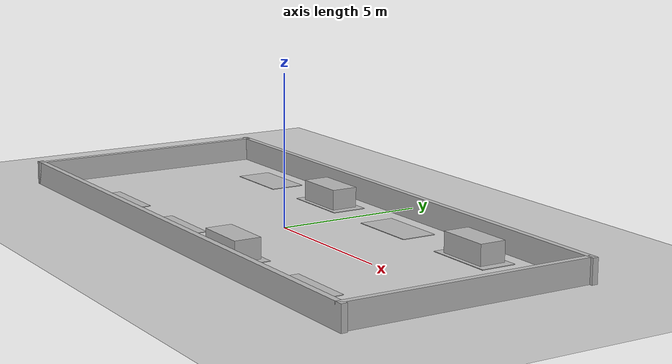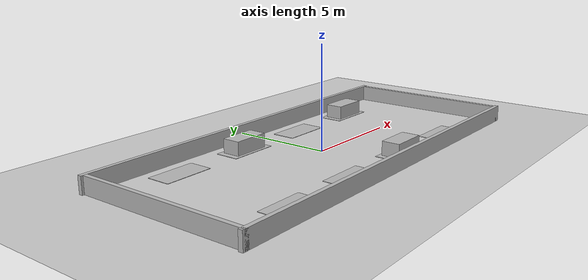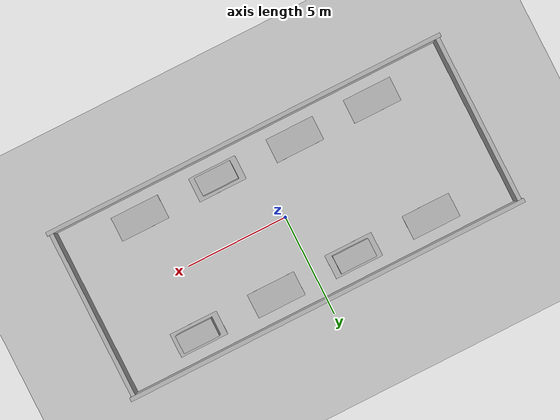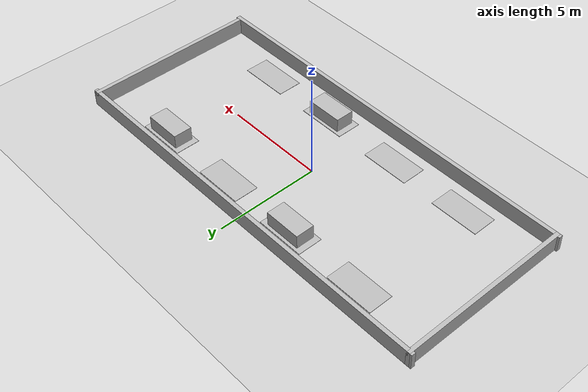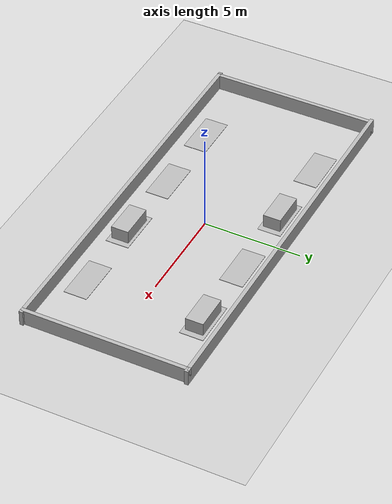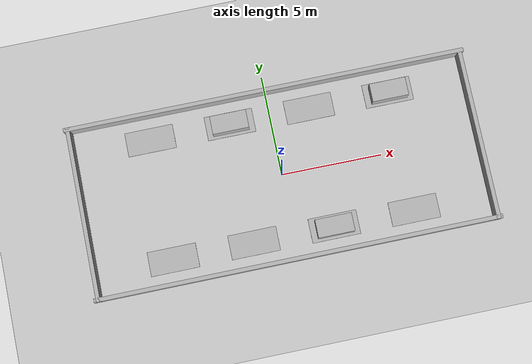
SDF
<?xml version="1.0" ?>
<sdf version="1.6">
  <world name="parking_lot_mini">

    <physics type="ode">
      <max_step_size>0.001</max_step_size>
      <real_time_update_rate>1000</real_time_update_rate>
    </physics>

    <include><uri>model://sun</uri></include>
    <include><uri>model://ground_plane</uri></include>

    <!-- Perimeter curbs -->
    <model name="curb_north"><static>true</static><pose>0 4.2 0.4 0 0 0</pose>
      <link name="l"><collision name="c"><geometry><box><size>20 0.2 0.8</size></box></geometry></collision>
        <visual name="v"><geometry><box><size>20 0.2 0.8</size></box></geometry></visual></link></model>

    <model name="curb_south"><static>true</static><pose>0 -4.2 0.4 0 0 0</pose>
      <link name="l"><collision name="c"><geometry><box><size>20 0.2 0.8</size></box></geometry></collision>
        <visual name="v"><geometry><box><size>20 0.2 0.8</size></box></geometry></visual></link></model>

    <model name="curb_east"><static>true</static><pose>9.8 0 0.4 0 0 0</pose>
      <link name="l"><collision name="c"><geometry><box><size>0.2 8.6 0.8</size></box></geometry></collision>
        <visual name="v"><geometry><box><size>0.2 8.6 0.8</size></box></geometry></visual></link></model>

    <model name="curb_west"><static>true</static><pose>-9.8 0 0.4 0 0 0</pose>
      <link name="l"><collision name="c"><geometry><box><size>0.2 8.6 0.8</size></box></geometry></collision>
        <visual name="v"><geometry><box><size>0.2 8.6 0.8</size></box></geometry></visual></link></model>

    <!-- Bay markers (visual only) -->
    <!-- x positions: -6, -2, 2, 6 ; y: +3 and -3 -->
    <model name="bayN1"><static>true</static><pose>-6 3.0 0.01 0 0 0</pose><link name="l"><visual name="v"><geometry><box><size>2.4 1.2 0.02</size></box></geometry></visual></link></model>
    <model name="bayN2"><static>true</static><pose>-2 3.0 0.01 0 0 0</pose><link name="l"><visual name="v"><geometry><box><size>2.4 1.2 0.02</size></box></geometry></visual></link></model>
    <model name="bayN3"><static>true</static><pose>2 3.0 0.01 0 0 0</pose><link name="l"><visual name="v"><geometry><box><size>2.4 1.2 0.02</size></box></geometry></visual></link></model>
    <model name="bayN4"><static>true</static><pose>6 3.0 0.01 0 0 0</pose><link name="l"><visual name="v"><geometry><box><size>2.4 1.2 0.02</size></box></geometry></visual></link></model>

    <model name="bayS1"><static>true</static><pose>-6 -3.0 0.01 0 0 0</pose><link name="l"><visual name="v"><geometry><box><size>2.4 1.2 0.02</size></box></geometry></visual></link></model>
    <model name="bayS2"><static>true</static><pose>-2 -3.0 0.01 0 0 0</pose><link name="l"><visual name="v"><geometry><box><size>2.4 1.2 0.02</size></box></geometry></visual></link></model>
    <model name="bayS3"><static>true</static><pose>2 -3.0 0.01 0 0 0</pose><link name="l"><visual name="v"><geometry><box><size>2.4 1.2 0.02</size></box></geometry></visual></link></model>
    <model name="bayS4"><static>true</static><pose>6 -3.0 0.01 0 0 0</pose><link name="l"><visual name="v"><geometry><box><size>2.4 1.2 0.02</size></box></geometry></visual></link></model>

    <!-- “Cars” as static boxes occupying some bays -->
    <model name="car_N2"><static>true</static><pose>-2 3.0 0.35 0 0 0</pose>
      <link name="l"><collision name="c"><geometry><box><size>1.8 0.9 0.7</size></box></geometry></collision>
      <visual name="v"><geometry><box><size>1.8 0.9 0.7</size></box></geometry></visual></link></model>

    <model name="car_S3"><static>true</static><pose>2 -3.0 0.35 0 0 0</pose>
      <link name="l"><collision name="c"><geometry><box><size>1.8 0.9 0.7</size></box></geometry></collision>
      <visual name="v"><geometry><box><size>1.8 0.9 0.7</size></box></geometry></visual></link></model>

    <model name="car_N4"><static>true</static><pose>6 3.0 0.35 0 0 0</pose>
      <link name="l"><collision name="c"><geometry><box><size>1.8 0.9 0.7</size></box></geometry></collision>
      <visual name="v"><geometry><box><size>1.8 0.9 0.7</size></box></geometry></visual></link></model>

  </world>
</sdf>
